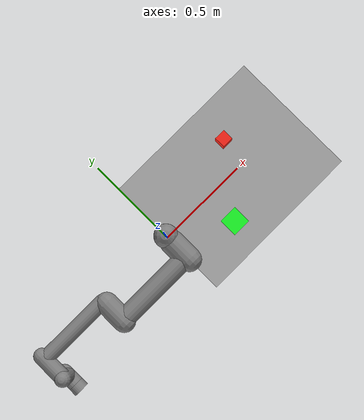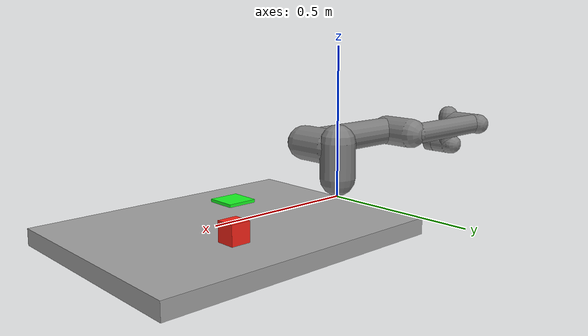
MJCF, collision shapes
<mujoco model="ur5e_scene">
    <include file="ur5e.xml"/>
    <visual>

        <headlight
            diffuse="0.6 0.6 0.6"
            ambient="0.3 0.3 0.3"
            specular="0 0 0"
        />

    </visual>

    <worldbody>
        <light
            pos="0.4 0 1.5"
            dir="0 0 -1"
            directional="true"
        />

        <geom
            name="table"
            type="box"
            pos="0.45 0 -0.025"
            size="0.45 0.35 0.025"
            rgba="0.65 0.65 0.65 1"
        />

        <body
            name="cube"
            pos="0.55 0.15 0.03"
        >
            <geom
                name="cube_geom"
                type="box"
                size="0.03 0.03 0.03"
                rgba="1 0.15 0.10 1"
            />
        </body>

        <body
            name="place"
            pos="0.30 -0.18 0.005"
        >
            <geom
                name="place_geom"
                type="box"
                size="0.05 0.05 0.005"
                rgba="0.10 1 0.15 1"
            />
        </body>

        <camera
            name="top_camera"
            pos="0.45 0 1.35"
            quat="1 0 0 0"
            fovy="60"
        />

    </worldbody>

</mujoco>

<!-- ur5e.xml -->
<mujoco model="ur5e">
  <compiler angle="radian" meshdir="assets" autolimits="true"/>

  <option integrator="implicitfast"/>

  <default>
    <default class="ur5e">
      <material specular="0.5" shininess="0.25"/>
      <joint axis="0 1 0" range="-6.28319 6.28319" armature="0.1"/>
      <general gaintype="fixed" biastype="affine" ctrlrange="-6.2831 6.2831" gainprm="2000" biasprm="0 -2000 -400"
        forcerange="-150 150"/>
      <default class="size3">
        <default class="size3_limited">
          <joint range="-3.1415 3.1415"/>
          <general ctrlrange="-3.1415 3.1415"/>
        </default>
      </default>
      <default class="size1">
        <general gainprm="500" biasprm="0 -500 -100" forcerange="-28 28"/>
      </default>
      <default class="visual">
        <geom type="mesh" contype="0" conaffinity="0" group="2"/>
      </default>
      <default class="collision">
        <geom type="capsule" group="3"/>
        <default class="eef_collision">
          <geom type="cylinder"/>
        </default>
      </default>
      <site size="0.001" rgba="0.5 0.5 0.5 0.3" group="4"/>
    </default>
  </default>

  <asset>
    <material class="ur5e" name="black" rgba="0.033 0.033 0.033 1"/>
    <material class="ur5e" name="jointgray" rgba="0.278 0.278 0.278 1"/>
    <material class="ur5e" name="linkgray" rgba="0.82 0.82 0.82 1"/>
    <material class="ur5e" name="urblue" rgba="0.49 0.678 0.8 1"/>

    <mesh file="base_0.obj"/>
    <mesh file="base_1.obj"/>
    <mesh file="shoulder_0.obj"/>
    <mesh file="shoulder_1.obj"/>
    <mesh file="shoulder_2.obj"/>
    <mesh file="upperarm_0.obj"/>
    <mesh file="upperarm_1.obj"/>
    <mesh file="upperarm_2.obj"/>
    <mesh file="upperarm_3.obj"/>
    <mesh file="forearm_0.obj"/>
    <mesh file="forearm_1.obj"/>
    <mesh file="forearm_2.obj"/>
    <mesh file="forearm_3.obj"/>
    <mesh file="wrist1_0.obj"/>
    <mesh file="wrist1_1.obj"/>
    <mesh file="wrist1_2.obj"/>
    <mesh file="wrist2_0.obj"/>
    <mesh file="wrist2_1.obj"/>
    <mesh file="wrist2_2.obj"/>
    <mesh file="wrist3.obj"/>
  </asset>

  <worldbody>
    <light name="spotlight" mode="targetbodycom" target="wrist_2_link" pos="0 -1 2"/>
    <body name="base" quat="0 0 0 -1" childclass="ur5e">
      <inertial mass="4.0" pos="0 0 0" diaginertia="0.00443333156 0.00443333156 0.0072"/>
      <geom mesh="base_0" material="black" class="visual"/>
      <geom mesh="base_1" material="jointgray" class="visual"/>
      <body name="shoulder_link" pos="0 0 0.163">
        <inertial mass="3.7" pos="0 0 0" diaginertia="0.0102675 0.0102675 0.00666"/>
        <joint name="shoulder_pan_joint" class="size3" axis="0 0 1"/>
        <geom mesh="shoulder_0" material="urblue" class="visual"/>
        <geom mesh="shoulder_1" material="black" class="visual"/>
        <geom mesh="shoulder_2" material="jointgray" class="visual"/>
        <geom class="collision" size="0.06 0.06" pos="0 0 -0.04"/>
        <body name="upper_arm_link" pos="0 0.138 0" quat="1 0 1 0">
          <inertial mass="8.393" pos="0 0 0.2125" diaginertia="0.133886 0.133886 0.0151074"/>
          <joint name="shoulder_lift_joint" class="size3"/>
          <geom mesh="upperarm_0" material="linkgray" class="visual"/>
          <geom mesh="upperarm_1" material="black" class="visual"/>
          <geom mesh="upperarm_2" material="jointgray" class="visual"/>
          <geom mesh="upperarm_3" material="urblue" class="visual"/>
          <geom class="collision" pos="0 -0.04 0" quat="1 1 0 0" size="0.06 0.06"/>
          <geom class="collision" size="0.05 0.2" pos="0 0 0.2"/>
          <body name="forearm_link" pos="0 -0.131 0.425">
            <inertial mass="2.275" pos="0 0 0.196" diaginertia="0.0311796 0.0311796 0.004095"/>
            <joint name="elbow_joint" class="size3_limited"/>
            <geom mesh="forearm_0" material="urblue" class="visual"/>
            <geom mesh="forearm_1" material="linkgray" class="visual"/>
            <geom mesh="forearm_2" material="black" class="visual"/>
            <geom mesh="forearm_3" material="jointgray" class="visual"/>
            <geom class="collision" pos="0 0.08 0" quat="1 1 0 0" size="0.055 0.06"/>
            <geom class="collision" size="0.038 0.19" pos="0 0 0.2"/>
            <body name="wrist_1_link" pos="0 0 0.392" quat="1 0 1 0">
              <inertial mass="1.219" pos="0 0.127 0" diaginertia="0.0025599 0.0025599 0.0021942"/>
              <joint name="wrist_1_joint" class="size1"/>
              <geom mesh="wrist1_0" material="black" class="visual"/>
              <geom mesh="wrist1_1" material="urblue" class="visual"/>
              <geom mesh="wrist1_2" material="jointgray" class="visual"/>
              <geom class="collision" pos="0 0.05 0" quat="1 1 0 0" size="0.04 0.07"/>
              <body name="wrist_2_link" pos="0 0.127 0">
                <inertial mass="1.219" pos="0 0 0.1" diaginertia="0.0025599 0.0025599 0.0021942"/>
                <joint name="wrist_2_joint" axis="0 0 1" class="size1"/>
                <geom mesh="wrist2_0" material="black" class="visual"/>
                <geom mesh="wrist2_1" material="urblue" class="visual"/>
                <geom mesh="wrist2_2" material="jointgray" class="visual"/>
                <geom class="collision" size="0.04 0.06" pos="0 0 0.04"/>
                <geom class="collision" pos="0 0.02 0.1" quat="1 1 0 0" size="0.04 0.04"/>
                <body name="wrist_3_link" pos="0 0 0.1">
                  <inertial mass="0.1889" pos="0 0.0771683 0" quat="1 0 0 1"
                    diaginertia="0.000132134 9.90863e-05 9.90863e-05"/>
                  <joint name="wrist_3_joint" class="size1"/>
                  <geom material="linkgray" mesh="wrist3" class="visual"/>
                  <geom class="eef_collision" pos="0 0.08 0" quat="1 1 0 0" size="0.04 0.02"/>
                  <site name="attachment_site" pos="0 0.1 0" quat="-1 1 0 0"/>
                </body>
              </body>
            </body>
          </body>
        </body>
      </body>
    </body>
  </worldbody>

  <actuator>
    <general class="size3" name="shoulder_pan" joint="shoulder_pan_joint"/>
    <general class="size3" name="shoulder_lift" joint="shoulder_lift_joint"/>
    <general class="size3_limited" name="elbow" joint="elbow_joint"/>
    <general class="size1" name="wrist_1" joint="wrist_1_joint"/>
    <general class="size1" name="wrist_2" joint="wrist_2_joint"/>
    <general class="size1" name="wrist_3" joint="wrist_3_joint"/>
  </actuator>

  <keyframe>
    <key name="home" qpos="-1.5708 -1.5708 1.5708 -1.5708 -1.5708 0" ctrl="-1.5708 -1.5708 1.5708 -1.5708 -1.5708 0"/>
  </keyframe>
</mujoco>
